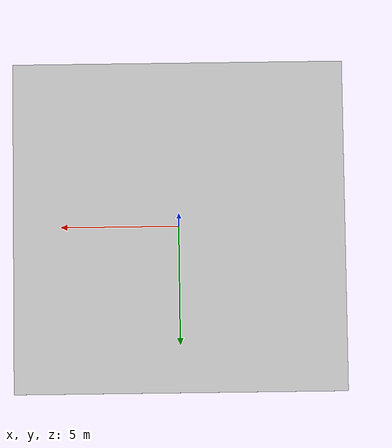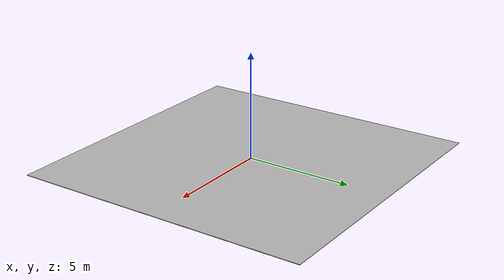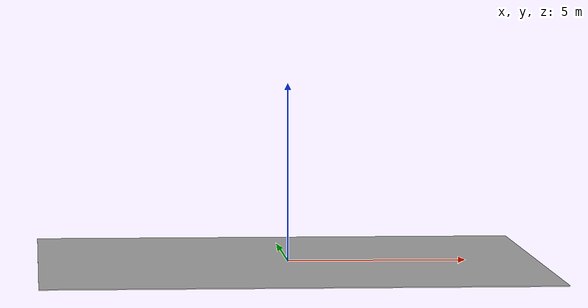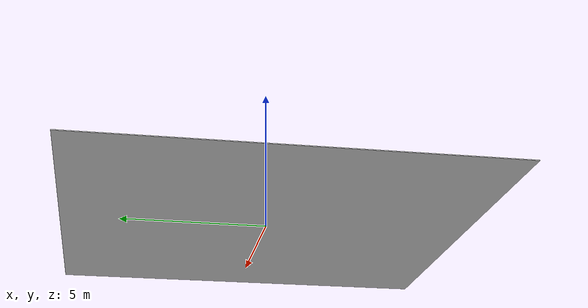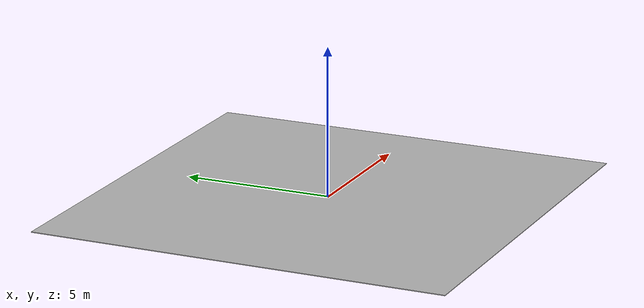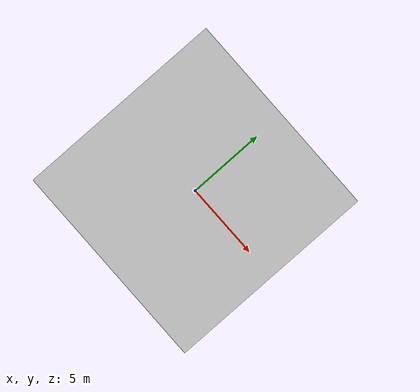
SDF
<?xml version='1.0'?>
<sdf version='1.7'>
  <model name='piso_plano'>
    <link name='link_0'>
      <inertial>
        <mass>14.2171</mass>
        <inertia>
          <ixx>310.23</ixx>
          <ixy>0</ixy>
          <ixz>0</ixz>
          <iyy>311.692</iyy>
          <iyz>0</iyz>
          <izz>621.915</izz>
        </inertia>
        <pose>0 0 0 0 -0 0</pose>
      </inertial>
      <pose>-0 -0 -0 0 -0 0</pose>
      <visual name='visual'>
        <pose>0 0 0 0 -0 0</pose>
        <geometry>
          <box>
            <size>14 14 0.024508</size>
          </box>
        </geometry>
        <material>
          <lighting>1</lighting>
          <script>
            <uri>model://piso_plano/materials/scripts</uri>
            <uri>model://piso_plano/materials/textures</uri>
            <name>textur/pis</name>
          </script>
          <shader type='pixel'/>
        </material>
        <transparency>0</transparency>
        <cast_shadows>1</cast_shadows>
      </visual>
      <collision name='collision'>
        <laser_retro>0</laser_retro>
        <max_contacts>10</max_contacts>
        <pose>0 0 0 0 -0 0</pose>
        <geometry>
          <box>
            <size>14 14 0.024508</size>
          </box>
        </geometry>
        <surface>
          <friction>
            <ode>
              <mu>1</mu>
              <mu2>1</mu2>
              <fdir1>0 0 0</fdir1>
              <slip1>0</slip1>
              <slip2>0</slip2>
            </ode>
            <torsional>
              <coefficient>1</coefficient>
              <patch_radius>0</patch_radius>
              <surface_radius>0</surface_radius>
              <use_patch_radius>1</use_patch_radius>
              <ode>
                <slip>0</slip>
              </ode>
            </torsional>
          </friction>
          <bounce>
            <restitution_coefficient>0</restitution_coefficient>
            <threshold>1e+06</threshold>
          </bounce>
          <contact>
            <collide_without_contact>0</collide_without_contact>
            <collide_without_contact_bitmask>1</collide_without_contact_bitmask>
            <collide_bitmask>1</collide_bitmask>
            <ode>
              <soft_cfm>0</soft_cfm>
              <soft_erp>0.2</soft_erp>
              <kp>1e+13</kp>
              <kd>1</kd>
              <max_vel>0.01</max_vel>
              <min_depth>0</min_depth>
            </ode>
            <bullet>
              <split_impulse>1</split_impulse>
              <split_impulse_penetration_threshold>-0.01</split_impulse_penetration_threshold>
              <soft_cfm>0</soft_cfm>
              <soft_erp>0.2</soft_erp>
              <kp>1e+13</kp>
              <kd>1</kd>
            </bullet>
          </contact>
        </surface>
      </collision>
    </link>
    <static>1</static>
    <allow_auto_disable>1</allow_auto_disable>
  </model>
</sdf>
